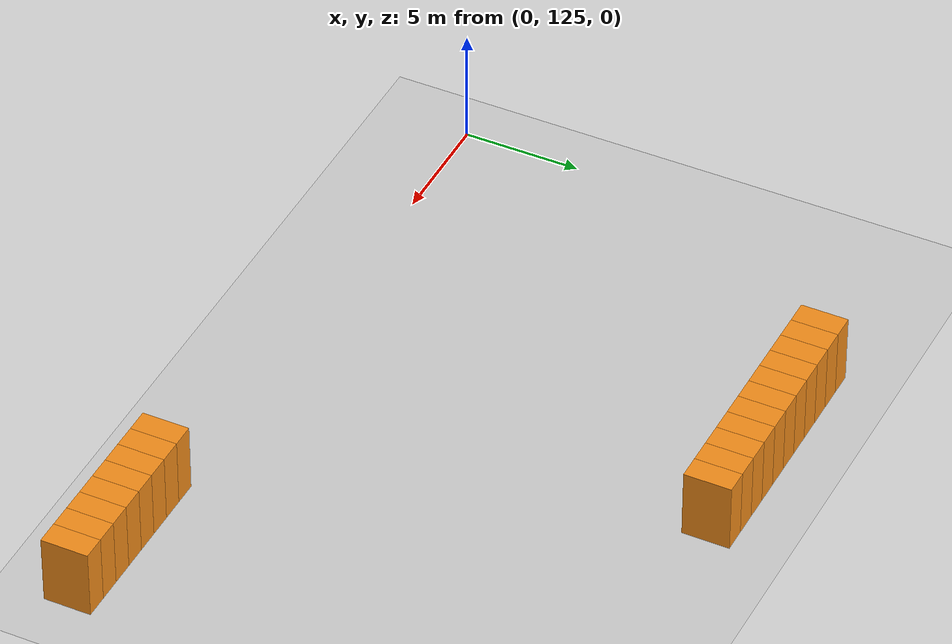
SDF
<sdf version="1.6">
 <world name="default">
  <include><uri>model://ground_plane</uri></include>
  <model name="unit_box_011">
   <pose>7.50   144.00     1.50 0 0 0</pose>
   <static>1</static>
   <link name="link">
    <inertial>
     <mass>5000</mass>
     <inertia><ixx>200</ixx><ixy>0</ixy><ixz>0</ixz><iyy>200</iyy><iyz>0</iyz><izz>200</izz></inertia>
    </inertial>
    <collision name="collision"><geometry><box><size>1 2 3</size></box></geometry></collision>
    <visual name="visual">
     <geometry><box><size>1 2 3</size></box></geometry>
     <material>
      <script><name>Gazebo/Orange</name><uri>file://media/materials/scripts/gazebo.material</uri></script>
     </material>
    </visual>
   </link>
  </model>
  <model name="unit_box_024">
   <pose>8.50   144.00     1.50 0 0 0</pose>
   <static>1</static>
   <link name="link">
    <inertial>
     <mass>5000</mass>
     <inertia><ixx>200</ixx><ixy>0</ixy><ixz>0</ixz><iyy>200</iyy><iyz>0</iyz><izz>200</izz></inertia>
    </inertial>
    <collision name="collision"><geometry><box><size>1 2 3</size></box></geometry></collision>
    <visual name="visual">
     <geometry><box><size>1 2 3</size></box></geometry>
     <material>
      <script><name>Gazebo/Orange</name><uri>file://media/materials/scripts/gazebo.material</uri></script>
     </material>
    </visual>
   </link>
  </model>
  <model name="unit_box_037">
   <pose>9.50   144.00     1.50 0 0 0</pose>
   <static>1</static>
   <link name="link">
    <inertial>
     <mass>5000</mass>
     <inertia><ixx>200</ixx><ixy>0</ixy><ixz>0</ixz><iyy>200</iyy><iyz>0</iyz><izz>200</izz></inertia>
    </inertial>
    <collision name="collision"><geometry><box><size>1 2 3</size></box></geometry></collision>
    <visual name="visual">
     <geometry><box><size>1 2 3</size></box></geometry>
     <material>
      <script><name>Gazebo/Orange</name><uri>file://media/materials/scripts/gazebo.material</uri></script>
     </material>
    </visual>
   </link>
  </model>
  <model name="unit_box_050">
   <pose>10.50   144.00     1.50 0 0 0</pose>
   <static>1</static>
   <link name="link">
    <inertial>
     <mass>5000</mass>
     <inertia><ixx>200</ixx><ixy>0</ixy><ixz>0</ixz><iyy>200</iyy><iyz>0</iyz><izz>200</izz></inertia>
    </inertial>
    <collision name="collision"><geometry><box><size>1 2 3</size></box></geometry></collision>
    <visual name="visual">
     <geometry><box><size>1 2 3</size></box></geometry>
     <material>
      <script><name>Gazebo/Orange</name><uri>file://media/materials/scripts/gazebo.material</uri></script>
     </material>
    </visual>
   </link>
  </model>
  <model name="unit_box_063">
   <pose>11.50   144.00     1.50 0 0 0</pose>
   <static>1</static>
   <link name="link">
    <inertial>
     <mass>5000</mass>
     <inertia><ixx>200</ixx><ixy>0</ixy><ixz>0</ixz><iyy>200</iyy><iyz>0</iyz><izz>200</izz></inertia>
    </inertial>
    <collision name="collision"><geometry><box><size>1 2 3</size></box></geometry></collision>
    <visual name="visual">
     <geometry><box><size>1 2 3</size></box></geometry>
     <material>
      <script><name>Gazebo/Orange</name><uri>file://media/materials/scripts/gazebo.material</uri></script>
     </material>
    </visual>
   </link>
  </model>
  <model name="unit_box_076">
   <pose>12.50   144.00     1.50 0 0 0</pose>
   <static>1</static>
   <link name="link">
    <inertial>
     <mass>5000</mass>
     <inertia><ixx>200</ixx><ixy>0</ixy><ixz>0</ixz><iyy>200</iyy><iyz>0</iyz><izz>200</izz></inertia>
    </inertial>
    <collision name="collision"><geometry><box><size>1 2 3</size></box></geometry></collision>
    <visual name="visual">
     <geometry><box><size>1 2 3</size></box></geometry>
     <material>
      <script><name>Gazebo/Orange</name><uri>file://media/materials/scripts/gazebo.material</uri></script>
     </material>
    </visual>
   </link>
  </model>
  <model name="unit_box_089">
   <pose>13.50   144.00     1.50 0 0 0</pose>
   <static>1</static>
   <link name="link">
    <inertial>
     <mass>5000</mass>
     <inertia><ixx>200</ixx><ixy>0</ixy><ixz>0</ixz><iyy>200</iyy><iyz>0</iyz><izz>200</izz></inertia>
    </inertial>
    <collision name="collision"><geometry><box><size>1 2 3</size></box></geometry></collision>
    <visual name="visual">
     <geometry><box><size>1 2 3</size></box></geometry>
     <material>
      <script><name>Gazebo/Orange</name><uri>file://media/materials/scripts/gazebo.material</uri></script>
     </material>
    </visual>
   </link>
  </model>
  <model name="unit_box_102">
   <pose>14.50   144.00     1.50 0 0 0</pose>
   <static>1</static>
   <link name="link">
    <inertial>
     <mass>5000</mass>
     <inertia><ixx>200</ixx><ixy>0</ixy><ixz>0</ixz><iyy>200</iyy><iyz>0</iyz><izz>200</izz></inertia>
    </inertial>
    <collision name="collision"><geometry><box><size>1 2 3</size></box></geometry></collision>
    <visual name="visual">
     <geometry><box><size>1 2 3</size></box></geometry>
     <material>
      <script><name>Gazebo/Orange</name><uri>file://media/materials/scripts/gazebo.material</uri></script>
     </material>
    </visual>
   </link>
  </model>
  <model name="unit_box_115">
   <pose>15.50   144.00     1.50 0 0 0</pose>
   <static>1</static>
   <link name="link">
    <inertial>
     <mass>5000</mass>
     <inertia><ixx>200</ixx><ixy>0</ixy><ixz>0</ixz><iyy>200</iyy><iyz>0</iyz><izz>200</izz></inertia>
    </inertial>
    <collision name="collision"><geometry><box><size>1 2 3</size></box></geometry></collision>
    <visual name="visual">
     <geometry><box><size>1 2 3</size></box></geometry>
     <material>
      <script><name>Gazebo/Orange</name><uri>file://media/materials/scripts/gazebo.material</uri></script>
     </material>
    </visual>
   </link>
  </model>
  <model name="unit_box_128">
   <pose>16.50   144.00     1.50 0 0 0</pose>
   <static>1</static>
   <link name="link">
    <inertial>
     <mass>5000</mass>
     <inertia><ixx>200</ixx><ixy>0</ixy><ixz>0</ixz><iyy>200</iyy><iyz>0</iyz><izz>200</izz></inertia>
    </inertial>
    <collision name="collision"><geometry><box><size>1 2 3</size></box></geometry></collision>
    <visual name="visual">
     <geometry><box><size>1 2 3</size></box></geometry>
     <material>
      <script><name>Gazebo/Orange</name><uri>file://media/materials/scripts/gazebo.material</uri></script>
     </material>
    </visual>
   </link>
  </model>
  <model name="unit_box_141">
   <pose>17.50   144.00     1.50 0 0 0</pose>
   <static>1</static>
   <link name="link">
    <inertial>
     <mass>5000</mass>
     <inertia><ixx>200</ixx><ixy>0</ixy><ixz>0</ixz><iyy>200</iyy><iyz>0</iyz><izz>200</izz></inertia>
    </inertial>
    <collision name="collision"><geometry><box><size>1 2 3</size></box></geometry></collision>
    <visual name="visual">
     <geometry><box><size>1 2 3</size></box></geometry>
     <material>
      <script><name>Gazebo/Orange</name><uri>file://media/materials/scripts/gazebo.material</uri></script>
     </material>
    </visual>
   </link>
  </model>
  <model name="unit_box_231">
   <pose>24.50   124.00     1.50 0 0 0</pose>
   <static>1</static>
   <link name="link">
    <inertial>
     <mass>5000</mass>
     <inertia><ixx>200</ixx><ixy>0</ixy><ixz>0</ixz><iyy>200</iyy><iyz>0</iyz><izz>200</izz></inertia>
    </inertial>
    <collision name="collision"><geometry><box><size>1 2 3</size></box></geometry></collision>
    <visual name="visual">
     <geometry><box><size>1 2 3</size></box></geometry>
     <material>
      <script><name>Gazebo/Orange</name><uri>file://media/materials/scripts/gazebo.material</uri></script>
     </material>
    </visual>
   </link>
  </model>
  <model name="unit_box_244">
   <pose>25.50   124.00     1.50 0 0 0</pose>
   <static>1</static>
   <link name="link">
    <inertial>
     <mass>5000</mass>
     <inertia><ixx>200</ixx><ixy>0</ixy><ixz>0</ixz><iyy>200</iyy><iyz>0</iyz><izz>200</izz></inertia>
    </inertial>
    <collision name="collision"><geometry><box><size>1 2 3</size></box></geometry></collision>
    <visual name="visual">
     <geometry><box><size>1 2 3</size></box></geometry>
     <material>
      <script><name>Gazebo/Orange</name><uri>file://media/materials/scripts/gazebo.material</uri></script>
     </material>
    </visual>
   </link>
  </model>
  <model name="unit_box_257">
   <pose>26.50   124.00     1.50 0 0 0</pose>
   <static>1</static>
   <link name="link">
    <inertial>
     <mass>5000</mass>
     <inertia><ixx>200</ixx><ixy>0</ixy><ixz>0</ixz><iyy>200</iyy><iyz>0</iyz><izz>200</izz></inertia>
    </inertial>
    <collision name="collision"><geometry><box><size>1 2 3</size></box></geometry></collision>
    <visual name="visual">
     <geometry><box><size>1 2 3</size></box></geometry>
     <material>
      <script><name>Gazebo/Orange</name><uri>file://media/materials/scripts/gazebo.material</uri></script>
     </material>
    </visual>
   </link>
  </model>
  <model name="unit_box_270">
   <pose>27.50   124.00     1.50 0 0 0</pose>
   <static>1</static>
   <link name="link">
    <inertial>
     <mass>5000</mass>
     <inertia><ixx>200</ixx><ixy>0</ixy><ixz>0</ixz><iyy>200</iyy><iyz>0</iyz><izz>200</izz></inertia>
    </inertial>
    <collision name="collision"><geometry><box><size>1 2 3</size></box></geometry></collision>
    <visual name="visual">
     <geometry><box><size>1 2 3</size></box></geometry>
     <material>
      <script><name>Gazebo/Orange</name><uri>file://media/materials/scripts/gazebo.material</uri></script>
     </material>
    </visual>
   </link>
  </model>
  <model name="unit_box_283">
   <pose>28.50   124.00     1.50 0 0 0</pose>
   <static>1</static>
   <link name="link">
    <inertial>
     <mass>5000</mass>
     <inertia><ixx>200</ixx><ixy>0</ixy><ixz>0</ixz><iyy>200</iyy><iyz>0</iyz><izz>200</izz></inertia>
    </inertial>
    <collision name="collision"><geometry><box><size>1 2 3</size></box></geometry></collision>
    <visual name="visual">
     <geometry><box><size>1 2 3</size></box></geometry>
     <material>
      <script><name>Gazebo/Orange</name><uri>file://media/materials/scripts/gazebo.material</uri></script>
     </material>
    </visual>
   </link>
  </model>
  <model name="unit_box_296">
   <pose>29.50   124.00     1.50 0 0 0</pose>
   <static>1</static>
   <link name="link">
    <inertial>
     <mass>5000</mass>
     <inertia><ixx>200</ixx><ixy>0</ixy><ixz>0</ixz><iyy>200</iyy><iyz>0</iyz><izz>200</izz></inertia>
    </inertial>
    <collision name="collision"><geometry><box><size>1 2 3</size></box></geometry></collision>
    <visual name="visual">
     <geometry><box><size>1 2 3</size></box></geometry>
     <material>
      <script><name>Gazebo/Orange</name><uri>file://media/materials/scripts/gazebo.material</uri></script>
     </material>
    </visual>
   </link>
  </model>
  <model name="unit_box_309">
   <pose>30.50   124.00     1.50 0 0 0</pose>
   <static>1</static>
   <link name="link">
    <inertial>
     <mass>5000</mass>
     <inertia><ixx>200</ixx><ixy>0</ixy><ixz>0</ixz><iyy>200</iyy><iyz>0</iyz><izz>200</izz></inertia>
    </inertial>
    <collision name="collision"><geometry><box><size>1 2 3</size></box></geometry></collision>
    <visual name="visual">
     <geometry><box><size>1 2 3</size></box></geometry>
     <material>
      <script><name>Gazebo/Orange</name><uri>file://media/materials/scripts/gazebo.material</uri></script>
     </material>
    </visual>
   </link>
  </model>
  <model name="unit_box_322">
   <pose>31.50   124.00     1.50 0 0 0</pose>
   <static>1</static>
   <link name="link">
    <inertial>
     <mass>5000</mass>
     <inertia><ixx>200</ixx><ixy>0</ixy><ixz>0</ixz><iyy>200</iyy><iyz>0</iyz><izz>200</izz></inertia>
    </inertial>
    <collision name="collision"><geometry><box><size>1 2 3</size></box></geometry></collision>
    <visual name="visual">
     <geometry><box><size>1 2 3</size></box></geometry>
     <material>
      <script><name>Gazebo/Orange</name><uri>file://media/materials/scripts/gazebo.material</uri></script>
     </material>
    </visual>
   </link>
  </model>
 </world>
</sdf>
